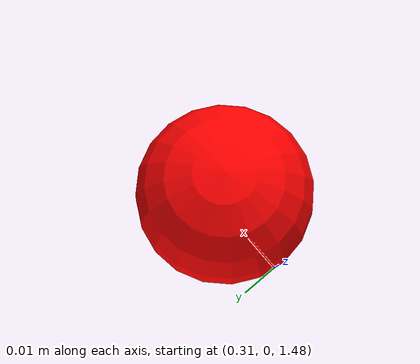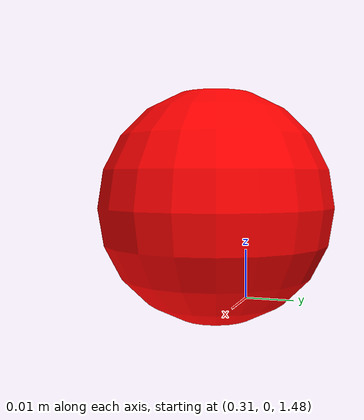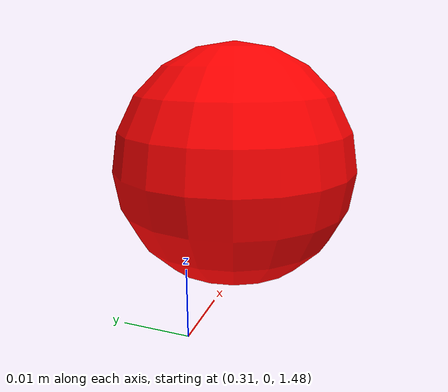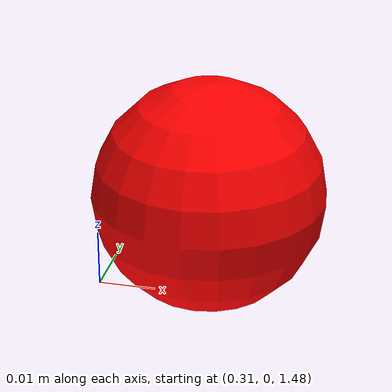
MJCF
<mujoco model="balls">

    <option gravity="0 0 -2"/>

    <!--To change the bouncing off the balls change the solref parameter-->
    <worldbody>
        <body name="Ball1" pos="0.33 0 1.5">
        <freejoint/>
        <geom name="ball1" type="sphere" size=".02" rgba="1 0 0 1" mass="1"/>
        </body>
    </worldbody>
</mujoco>
